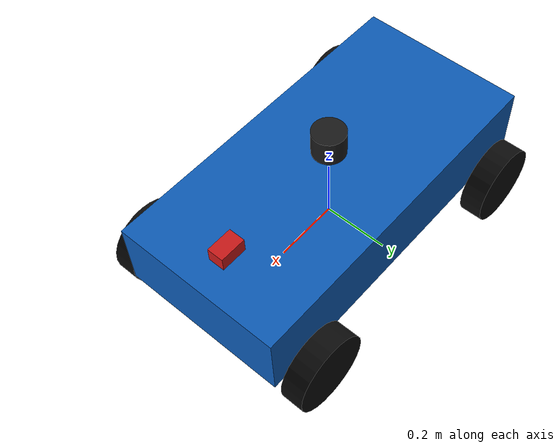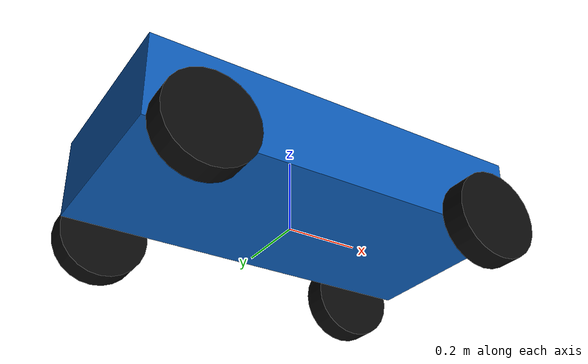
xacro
<?xml version="1.0"?>
<robot name="course_ackermann" xmlns:xacro="http://ros.org/wiki/xacro">

  <xacro:property name="body_length" value="1.05"/>
  <xacro:property name="body_width"  value="0.52"/>
  <xacro:property name="body_height" value="0.22"/>
  <xacro:property name="body_z"      value="0.12"/>
  <xacro:property name="body_mass"   value="12.0"/>

  <xacro:property name="wheel_radius" value="0.12"/>
  <xacro:property name="wheel_width"  value="0.07"/>
  <xacro:property name="wheel_mass"   value="0.8"/>

  <xacro:property name="knuckle_x"    value="0.40"/>
  <xacro:property name="knuckle_y"    value="0.31"/>
  <xacro:property name="knuckle_mass" value="0.2"/>

  <!-- позиции сенсоров по SDF; здесь отличаются для наглядности в RViz -->
  <xacro:property name="camera_x" value="0.40"/>
  <xacro:property name="camera_y" value="0.0"/>
  <xacro:property name="camera_z" value="0.25"/>

  <xacro:property name="lidar_x" value="0.0"/>
  <xacro:property name="lidar_y" value="0.0"/>
  <xacro:property name="lidar_z" value="${body_z + body_height/2 + 0.08}"/>

  <xacro:property name="imu_x" value="0.0"/>
  <xacro:property name="imu_y" value="0.0"/>
  <xacro:property name="imu_z" value="${body_z}"/>

  <xacro:property name="sensor_mass" value="0.0333"/>

  <!-- ═══════════════════════════════════════════════════════════════
       Макросы инерции (стандартные формулы, физ. допустимые)
       ═══════════════════════════════════════════════════════════════ -->
  <xacro:macro name="box_inertia" params="m x y z">
    <inertial>
      <mass value="${m}"/>
      <inertia
        ixx="${m/12*(y*y+z*z)}" ixy="0" ixz="0"
        iyy="${m/12*(x*x+z*z)}" iyz="0"
        izz="${m/12*(x*x+y*y)}"/>
    </inertial>
  </xacro:macro>

  <!-- Цилиндр с осью вдоль Y (так ориентированы колёса) -->
  <xacro:macro name="cylinder_inertia_y" params="m r h">
    <inertial>
      <mass value="${m}"/>
      <inertia
        ixx="${m/12*(3*r*r+h*h)}" ixy="0" ixz="0"
        iyy="${m*r*r/2}" iyz="0"
        izz="${m/12*(3*r*r+h*h)}"/>
    </inertial>
  </xacro:macro>

  <!-- ═══════════════════════════════════════════════════════════════
       КОРПУС
       ═══════════════════════════════════════════════════════════════ -->
  <link name="base_link">
    <visual>
      <origin xyz="0 0 ${body_z}" rpy="0 0 0"/>
      <geometry>
        <box size="${body_length} ${body_width} ${body_height}"/>
      </geometry>
      <material name="body_blue">
        <color rgba="0.05 0.36 0.72 1"/>
      </material>
    </visual>
    <collision>
      <origin xyz="0 0 ${body_z}" rpy="0 0 0"/>
      <geometry>
        <box size="${body_length} ${body_width} ${body_height}"/>
      </geometry>
    </collision>
    <xacro:box_inertia m="${body_mass}" x="${body_length}" y="${body_width}" z="${body_height}"/>
  </link>

  <!-- ═══════════════════════════════════════════════════════════════
       КАМЕРА  (fixed, parent = base_link)
       ═══════════════════════════════════════════════════════════════ -->
  <link name="camera_link">
    <visual>
      <origin xyz="0 0 0" rpy="0 0 0"/>
      <geometry>
        <box size="0.08 0.05 0.05"/>
      </geometry>
      <material name="camera_red">
        <color rgba="0.8 0.1 0.1 1"/>
      </material>
    </visual>
    <collision>
      <origin xyz="0 0 0" rpy="0 0 0"/>
      <geometry>
        <box size="0.08 0.05 0.05"/>
      </geometry>
    </collision>
    <xacro:box_inertia m="${sensor_mass}" x="0.08" y="0.05" z="0.05"/>
  </link>

  <joint name="camera_joint" type="fixed">
    <parent link="base_link"/>
    <child link="camera_link"/>
    <origin xyz="${camera_x} ${camera_y} ${camera_z}" rpy="0 0 0"/>
  </joint>

  <link name="lidar_link">
    <visual>
      <origin xyz="0 0 0" rpy="0 0 0"/>
      <geometry>
        <cylinder radius="0.05" length="0.08"/>
      </geometry>
      <material name="lidar_black">
        <color rgba="0.1 0.1 0.1 1"/>
      </material>
    </visual>
    <collision>
      <origin xyz="0 0 0" rpy="0 0 0"/>
      <geometry>
        <cylinder radius="0.05" length="0.08"/>
      </geometry>
    </collision>
    <inertial>
      <mass value="${sensor_mass}"/>
      <inertia ixx="0.000333" ixy="0" ixz="0"
               iyy="0.000333" iyz="0"
               izz="0.000333"/>
    </inertial>
  </link>

  <joint name="lidar_joint" type="fixed">
    <parent link="base_link"/>
    <child link="lidar_link"/>
    <origin xyz="${lidar_x} ${lidar_y} ${lidar_z}" rpy="0 0 0"/>
  </joint>

  <!-- ═══════════════════════════════════════════════════════════════
       IMU  (fixed, parent = base_link)
       ═══════════════════════════════════════════════════════════════ -->
  <link name="imu_link">
    <visual>
      <origin xyz="0 0 0" rpy="0 0 0"/>
      <geometry>
        <box size="0.05 0.05 0.02"/>
      </geometry>
      <material name="imu_green">
        <color rgba="0.1 0.8 0.1 1"/>
      </material>
    </visual>
    <collision>
      <origin xyz="0 0 0" rpy="0 0 0"/>
      <geometry>
        <box size="0.05 0.05 0.02"/>
      </geometry>
    </collision>
    <xacro:box_inertia m="${sensor_mass}" x="0.05" y="0.05" z="0.02"/>
  </link>

  <joint name="imu_joint" type="fixed">
    <parent link="base_link"/>
    <child link="imu_link"/>
    <origin xyz="${imu_x} ${imu_y} ${imu_z}" rpy="0 0 0"/>
  </joint>

  <xacro:macro name="front_assembly" params="prefix y_pos">
    <link name="${prefix}_knuckle">
      <inertial>
        <mass value="${knuckle_mass}"/>
        <inertia ixx="0.001" ixy="0" ixz="0"
                 iyy="0.001" iyz="0"
                 izz="0.001"/>
      </inertial>
    </link>

    <joint name="${prefix}_steering_joint" type="revolute">
      <parent link="base_link"/>
      <child link="${prefix}_knuckle"/>
      <origin xyz="${knuckle_x} ${y_pos} 0" rpy="0 0 0"/>
      <axis xyz="0 0 1"/>
      <limit lower="-0.55" upper="0.55" effort="25" velocity="1.0"/>
    </joint>

    <link name="${prefix}_wheel">
      <visual>
        <origin xyz="0 0 0" rpy="1.5708 0 0"/>
        <geometry>
          <cylinder radius="${wheel_radius}" length="${wheel_width}"/>
        </geometry>
        <material name="wheel_black">
          <color rgba="0.04 0.04 0.04 1"/>
        </material>
      </visual>
      <collision>
        <origin xyz="0 0 0" rpy="1.5708 0 0"/>
        <geometry>
          <cylinder radius="${wheel_radius}" length="${wheel_width}"/>
        </geometry>
      </collision>
      <xacro:cylinder_inertia_y m="${wheel_mass}" r="${wheel_radius}" h="${wheel_width}"/>
    </link>

    <joint name="${prefix}_wheel_joint" type="continuous">
      <parent link="${prefix}_knuckle"/>
      <child link="${prefix}_wheel"/>
      <origin xyz="0 0 0" rpy="0 0 0"/>
      <axis xyz="0 1 0"/>
    </joint>
  </xacro:macro>

  <xacro:front_assembly prefix="front_left"  y_pos="${knuckle_y}"/>
  <xacro:front_assembly prefix="front_right" y_pos="${-knuckle_y}"/>

  <!-- ═══════════════════════════════════════════════════════════════
       ЗАДНЯЯ ОСЬ: wheel (continuous Y), parent = base_link
       ═══════════════════════════════════════════════════════════════ -->
  <xacro:macro name="rear_wheel" params="prefix y_pos">
    <link name="${prefix}_wheel">
      <visual>
        <origin xyz="0 0 0" rpy="1.5708 0 0"/>
        <geometry>
          <cylinder radius="${wheel_radius}" length="${wheel_width}"/>
        </geometry>
        <material name="wheel_black">
          <color rgba="0.04 0.04 0.04 1"/>
        </material>
      </visual>
      <collision>
        <origin xyz="0 0 0" rpy="1.5708 0 0"/>
        <geometry>
          <cylinder radius="${wheel_radius}" length="${wheel_width}"/>
        </geometry>
      </collision>
      <xacro:cylinder_inertia_y m="${wheel_mass}" r="${wheel_radius}" h="${wheel_width}"/>
    </link>

    <joint name="${prefix}_wheel_joint" type="continuous">
      <parent link="base_link"/>
      <child link="${prefix}_wheel"/>
      <origin xyz="${-knuckle_x} ${y_pos} 0" rpy="0 0 0"/>
      <axis xyz="0 1 0"/>
    </joint>
  </xacro:macro>

  <xacro:rear_wheel prefix="rear_left"  y_pos="${knuckle_y}"/>
  <xacro:rear_wheel prefix="rear_right" y_pos="${-knuckle_y}"/>

</robot>
